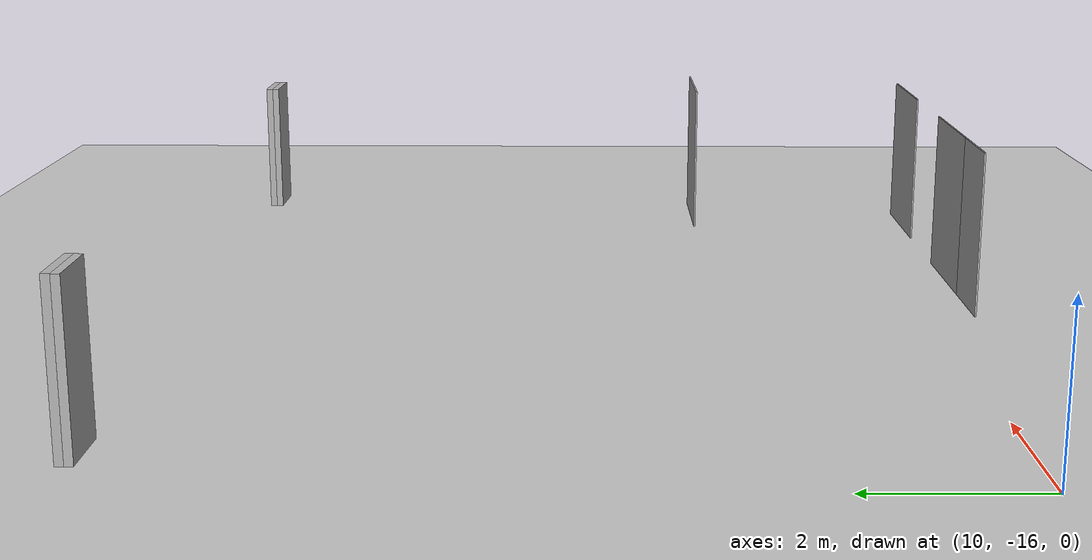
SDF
<sdf version="1.7">
 <world name="default">
  <model name="ground_plane">
   <static>1</static>
   <link name="link">
    <collision name="collision">
     <geometry><plane><normal>0 0 1</normal><size>100 100</size></plane></geometry>
     <surface>
      <contact><collide_bitmask>65535</collide_bitmask></contact>
      <friction><ode><mu>100</mu><mu2>50</mu2></ode></friction>
     </surface>
    </collision>
    <visual name="visual">
     <cast_shadows>0</cast_shadows>
     <geometry><plane><normal>0 0 1</normal><size>100 100</size></plane></geometry>
     <material>
      <script><uri>file://media/materials/scripts/gazebo.material</uri><name>Gazebo/Grey</name></script>
     </material>
    </visual>
   </link>
  </model>
  <model name="Desk_c2">
   <pose>12 0 -550670 0 -0 0</pose>
   <link name="base_link">
    <pose>-44 -14 0 0 -0 0</pose>
    <inertial>
     <inertia><ixx>1</ixx><ixy>0</ixy><ixz>0</ixz><iyy>1</iyy><iyz>0</iyz><izz>1</izz></inertia>
     <mass>1</mass>
    </inertial>
    <velocity>0 0 0 0 -0 0</velocity>
    <acceleration>0 0 0 0 -0 0</acceleration>
    <wrench>0 0 0 0 -0 0</wrench>
   </link>
   <scale>1 1 1</scale>
  </model>
  <model name="VisitorChair_c2">
   <pose>12 -0 -550670 0 -0 0</pose>
   <link name="body">
    <pose>-41 -15 0 0 0 -1.5708</pose>
    <inertial>
     <inertia><ixx>1</ixx><ixy>0</ixy><ixz>0</ixz><iyy>1</iyy><iyz>0</iyz><izz>1</izz></inertia>
     <mass>1</mass>
    </inertial>
    <velocity>0 0 0 0 -0 0</velocity>
    <acceleration>0 0 0 0 -0 0</acceleration>
    <wrench>0 0 0 0 -0 0</wrench>
   </link>
   <scale>1 1 1</scale>
  </model>
  <model name="WhiteCabinet_c2">
   <pose>12 0 -550670 0 -0 0</pose>
   <link name="body">
    <pose>-42 -6.5 0 0 -0 0</pose>
    <inertial>
     <inertia><ixx>1</ixx><ixy>0</ixy><ixz>0</ixz><iyy>1</iyy><iyz>0</iyz><izz>1</izz></inertia>
     <mass>1</mass>
    </inertial>
    <velocity>0 0 0 0 -0 0</velocity>
    <acceleration>0 0 0 0 -0 0</acceleration>
    <wrench>0 0 0 0 -0 0</wrench>
   </link>
   <scale>1 1 1</scale>
  </model>
  <model name="TrashBin_c2">
   <pose>12 0 -550670 0 -0 0</pose>
   <link name="body">
    <pose>-43.3 -6.5 0 0 -0 0</pose>
    <inertial>
     <inertia><ixx>1</ixx><ixy>0</ixy><ixz>0</ixz><iyy>1</iyy><iyz>0</iyz><izz>1</izz></inertia>
     <mass>1</mass>
    </inertial>
    <velocity>0 0 0 0 -0 0</velocity>
    <acceleration>0 0 0 0 -0 0</acceleration>
    <wrench>0 0 0 0 -0 0</wrench>
   </link>
   <scale>1 1 1</scale>
  </model>
  <model name="Desk_c3">
   <pose>24 0 -550670 0 -0 0</pose>
   <link name="base_link">
    <pose>-44 -14 0 0 -0 0</pose>
    <inertial>
     <inertia><ixx>1</ixx><ixy>0</ixy><ixz>0</ixz><iyy>1</iyy><iyz>0</iyz><izz>1</izz></inertia>
     <mass>1</mass>
    </inertial>
    <velocity>0 0 0 0 -0 0</velocity>
    <acceleration>0 0 0 0 -0 0</acceleration>
    <wrench>0 0 0 0 -0 0</wrench>
   </link>
   <scale>1 1 1</scale>
  </model>
  <model name="VisitorChair_c3">
   <pose>24 -0 -550670 0 -0 0</pose>
   <link name="body">
    <pose>-41 -15 0 0 0 -1.5708</pose>
    <inertial>
     <inertia><ixx>1</ixx><ixy>0</ixy><ixz>0</ixz><iyy>1</iyy><iyz>0</iyz><izz>1</izz></inertia>
     <mass>1</mass>
    </inertial>
    <velocity>0 0 0 0 -0 0</velocity>
    <acceleration>0 0 0 0 -0 0</acceleration>
    <wrench>0 0 0 0 -0 0</wrench>
   </link>
   <scale>1 1 1</scale>
  </model>
  <model name="WhiteCabinet_c3">
   <pose>24 0 -550670 0 -0 0</pose>
   <link name="body">
    <pose>-42 -6.5 0 0 -0 0</pose>
    <inertial>
     <inertia><ixx>1</ixx><ixy>0</ixy><ixz>0</ixz><iyy>1</iyy><iyz>0</iyz><izz>1</izz></inertia>
     <mass>1</mass>
    </inertial>
    <velocity>0 0 0 0 -0 0</velocity>
    <acceleration>0 0 0 0 -0 0</acceleration>
    <wrench>0 0 0 0 -0 0</wrench>
   </link>
   <scale>1 1 1</scale>
  </model>
  <model name="TrashBin_c3">
   <pose>24 0 -550670 0 -0 0</pose>
   <link name="body">
    <pose>-43.3 -6.5 0 0 -0 0</pose>
    <inertial>
     <inertia><ixx>1</ixx><ixy>0</ixy><ixz>0</ixz><iyy>1</iyy><iyz>0</iyz><izz>1</izz></inertia>
     <mass>1</mass>
    </inertial>
    <velocity>0 0 0 0 -0 0</velocity>
    <acceleration>0 0 0 0 -0 0</acceleration>
    <wrench>0 0 0 0 -0 0</wrench>
   </link>
   <scale>1 1 1</scale>
  </model>
  <model name="Desk_c7">
   <pose>8 15 -550670 0 -0 0</pose>
   <link name="base_link">
    <pose>-44 -14 0 0 -0 0</pose>
    <inertial>
     <inertia><ixx>1</ixx><ixy>0</ixy><ixz>0</ixz><iyy>1</iyy><iyz>0</iyz><izz>1</izz></inertia>
     <mass>1</mass>
    </inertial>
    <velocity>0 0 0 0 -0 0</velocity>
    <acceleration>0 0 0 0 -0 0</acceleration>
    <wrench>0 0 0 0 -0 0</wrench>
   </link>
   <scale>1 1 1</scale>
  </model>
  <model name="VisitorChair_c7">
   <pose>8 15 -550670 0 -0 0</pose>
   <link name="body">
    <pose>-41 -15 0 0 0 -1.5708</pose>
    <inertial>
     <inertia><ixx>1</ixx><ixy>0</ixy><ixz>0</ixz><iyy>1</iyy><iyz>0</iyz><izz>1</izz></inertia>
     <mass>1</mass>
    </inertial>
    <velocity>0 0 0 0 -0 0</velocity>
    <acceleration>0 0 0 0 -0 0</acceleration>
    <wrench>0 0 0 0 -0 0</wrench>
   </link>
   <scale>1 1 1</scale>
  </model>
  <model name="WhiteCabinet_c7">
   <pose>8 15 -550670 0 -0 0</pose>
   <link name="body">
    <pose>-42 -6.5 0 0 -0 0</pose>
    <inertial>
     <inertia><ixx>1</ixx><ixy>0</ixy><ixz>0</ixz><iyy>1</iyy><iyz>0</iyz><izz>1</izz></inertia>
     <mass>1</mass>
    </inertial>
    <velocity>0 0 0 0 -0 0</velocity>
    <acceleration>0 0 0 0 -0 0</acceleration>
    <wrench>0 0 0 0 -0 0</wrench>
   </link>
   <scale>1 1 1</scale>
  </model>
  <model name="TrashBin_c7">
   <pose>8 15 -550670 0 -0 0</pose>
   <link name="body">
    <pose>-43.3 -6.5 0 0 -0 0</pose>
    <inertial>
     <inertia><ixx>1</ixx><ixy>0</ixy><ixz>0</ixz><iyy>1</iyy><iyz>0</iyz><izz>1</izz></inertia>
     <mass>1</mass>
    </inertial>
    <velocity>0 0 0 0 -0 0</velocity>
    <acceleration>0 0 0 0 -0 0</acceleration>
    <wrench>0 0 0 0 -0 0</wrench>
   </link>
   <scale>1 1 1</scale>
  </model>
  <model name="door_08x2m_clone_0_clone_clone">
   <link name="link">
    <visual name="visual">
     <geometry><box><size>0.1 0.8 2</size></box></geometry>
     <material>
      <script>
       <uri>model://door_08x2m/material/script</uri>
       <uri>model://door_08x2m/material/textures</uri>
       <name>Custom/door_08x2m</name>
      </script>
     </material>
    </visual>
   </link>
   <static>1</static>
   <pose>11 -6.25 1 0 0 -1.5708</pose>
  </model>
  <model name="door_08x2m_clone_clone_clone_clone">
   <link name="link">
    <visual name="visual">
     <geometry><box><size>0.1 0.8 2</size></box></geometry>
     <material>
      <script>
       <uri>model://door_08x2m/material/script</uri>
       <uri>model://door_08x2m/material/textures</uri>
       <name>Custom/door_08x2m</name>
      </script>
     </material>
    </visual>
   </link>
   <static>1</static>
   <pose>11 -6.15 1 0 0 -1.5708</pose>
  </model>
  <model name="window_curtains_clone_clone_clone_clone_0_clone_0">
   <link name="link">
    <visual name="visual">
     <geometry><box><size>0.02 1.5676 2</size></box></geometry>
     <material>
      <script>
       <uri>model://window_curtains/material/script</uri>
       <uri>model://window_curtains/material/textures</uri>
       <name>Custom/window_curtains</name>
      </script>
      <emissive>0 1 0 1</emissive>
     </material>
    </visual>
   </link>
   <static>1</static>
   <pose>19.6668 -13.044 1.53112 0 0 -1.5708</pose>
  </model>
  <model name="window_curtains_clone_clone_clone_clone_0_clone_0_clone">
   <link name="link">
    <visual name="visual">
     <geometry><box><size>0.02 1.5676 2</size></box></geometry>
     <material>
      <script>
       <uri>model://window_curtains/material/script</uri>
       <uri>model://window_curtains/material/textures</uri>
       <name>Custom/window_curtains</name>
      </script>
      <emissive>0 1 0 1</emissive>
     </material>
    </visual>
   </link>
   <static>1</static>
   <pose>19 -16.1 1.53112 0 0 -1.5708</pose>
  </model>
  <model name="window_curtains_clone_clone_clone_clone_0_clone_0_clone_clone">
   <link name="link">
    <visual name="visual">
     <geometry><box><size>0.02 1.5676 2</size></box></geometry>
     <material>
      <script>
       <uri>model://window_curtains/material/script</uri>
       <uri>model://window_curtains/material/textures</uri>
       <name>Custom/window_curtains</name>
      </script>
      <emissive>0 1 0 1</emissive>
     </material>
    </visual>
   </link>
   <static>1</static>
   <pose>16 -16.1 1.53112 0 0 -1.5708</pose>
  </model>
  <model name="window_curtains_clone_clone_clone_clone_0_clone_0_clone_clone_clone">
   <link name="link">
    <visual name="visual">
     <geometry><box><size>0.02 1.5676 2</size></box></geometry>
     <material>
      <script>
       <uri>model://window_curtains/material/script</uri>
       <uri>model://window_curtains/material/textures</uri>
       <name>Custom/window_curtains</name>
      </script>
      <emissive>0 1 0 1</emissive>
     </material>
    </visual>
   </link>
   <static>1</static>
   <pose>15 -16.1 1.53112 0 0 -1.5708</pose>
  </model>
  <model name="door_08x2m_clone_clone_clone_clone_clone">
   <link name="link">
    <visual name="visual">
     <geometry><box><size>0.1 0.8 2</size></box></geometry>
     <material>
      <script>
       <uri>model://door_08x2m/material/script</uri>
       <uri>model://door_08x2m/material/textures</uri>
       <name>Custom/door_08x2m</name>
      </script>
     </material>
    </visual>
   </link>
   <static>1</static>
   <pose>23 -6.15 1 0 0 -1.5708</pose>
  </model>
  <model name="door_08x2m_clone_0_clone_clone_clone">
   <link name="link">
    <visual name="visual">
     <geometry><box><size>0.1 0.8 2</size></box></geometry>
     <material>
      <script>
       <uri>model://door_08x2m/material/script</uri>
       <uri>model://door_08x2m/material/textures</uri>
       <name>Custom/door_08x2m</name>
      </script>
     </material>
    </visual>
   </link>
   <static>1</static>
   <pose>23 -6.25 1 0 0 -1.5708</pose>
  </model>
 </world>
</sdf>
